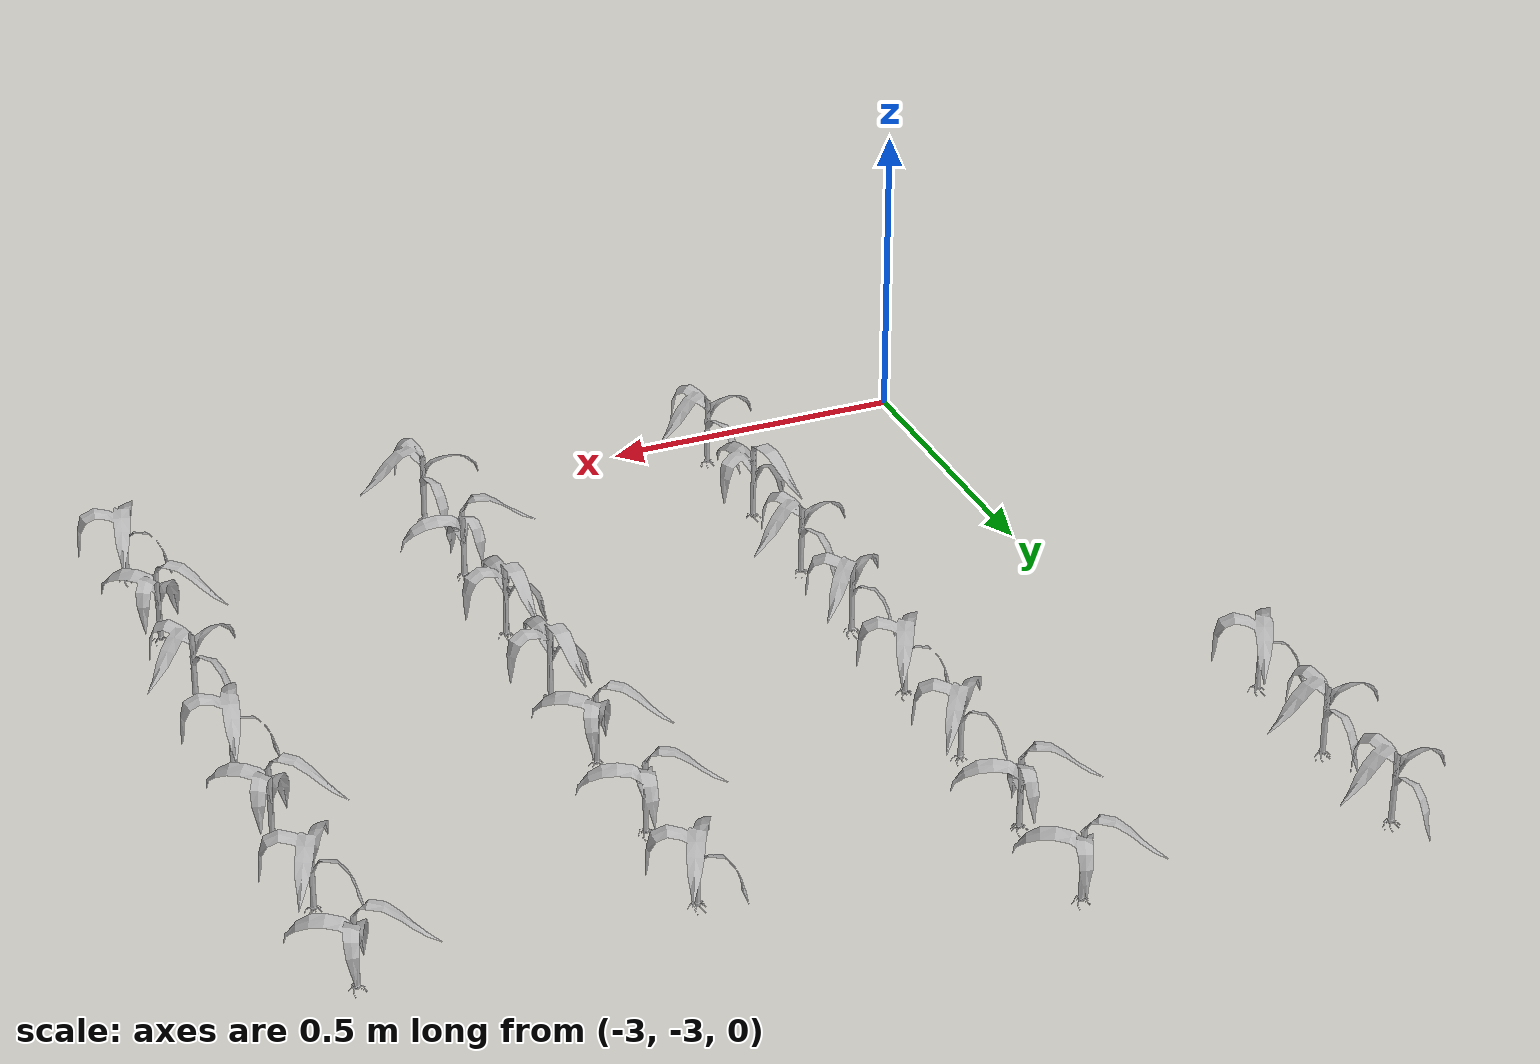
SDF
<sdf version="1.7">
 <world name="default">
  <model name="maize_-3.1033724693828124_-1.8749999999999996">
   <static>1</static>
   <link name="link">
    <inertial>
     <mass>0.2</mass>
     <inertia>
      <ixx>0.166667</ixx>
      <ixy>0</ixy>
      <ixz>0</ixz>
      <iyy>0.166667</iyy>
      <iyz>0</iyz>
      <izz>0.166667</izz>
     </inertia>
    </inertial>
    <collision name="collision">
     <geometry><mesh><uri>model://corn_3/meshes/corn.dae</uri><scale>0.25 0.25 0.25</scale></mesh></geometry>
     <surface>
      <friction><ode><mu>0</mu><mu2>0</mu2></ode></friction>
      <contact><ode><kp>0</kp><kd>0</kd><max_vel>0</max_vel><min_depth>0.002</min_depth></ode></contact>
     </surface>
    </collision>
    <visual name="visual">
     <geometry><mesh><uri>model://corn_3/meshes/corn.dae</uri><scale>0.25 0.25 0.25</scale></mesh></geometry>
    </visual>
    <velocity_decay><linear>0</linear><angular>0</angular></velocity_decay>
   </link>
   <pose>-3.10337 -1.875 0.05 0 -0 1.13271</pose>
  </model>
  <model name="maize_-3.1033724693828124_-1.6799999999999997">
   <static>1</static>
   <link name="link">
    <inertial>
     <mass>0.2</mass>
     <inertia>
      <ixx>0.166667</ixx>
      <ixy>0</ixy>
      <ixz>0</ixz>
      <iyy>0.166667</iyy>
      <iyz>0</iyz>
      <izz>0.166667</izz>
     </inertia>
    </inertial>
    <collision name="collision">
     <geometry><mesh><uri>model://corn_3/meshes/corn.dae</uri><scale>0.25 0.25 0.25</scale></mesh></geometry>
     <surface>
      <friction><ode><mu>0</mu><mu2>0</mu2></ode></friction>
      <contact><ode><kp>0</kp><kd>0</kd><max_vel>0</max_vel><min_depth>0.002</min_depth></ode></contact>
     </surface>
    </collision>
    <visual name="visual">
     <geometry><mesh><uri>model://corn_3/meshes/corn.dae</uri><scale>0.25 0.25 0.25</scale></mesh></geometry>
    </visual>
    <velocity_decay><linear>0</linear><angular>0</angular></velocity_decay>
   </link>
   <pose>-3.10337 -1.68 0.05 0 -0 0.282792</pose>
  </model>
  <model name="maize_-3.1033724693828124_-1.4849999999999999">
   <static>1</static>
   <link name="link">
    <inertial>
     <mass>0.2</mass>
     <inertia>
      <ixx>0.166667</ixx>
      <ixy>0</ixy>
      <ixz>0</ixz>
      <iyy>0.166667</iyy>
      <iyz>0</iyz>
      <izz>0.166667</izz>
     </inertia>
    </inertial>
    <collision name="collision">
     <geometry><mesh><uri>model://corn_3/meshes/corn.dae</uri><scale>0.25 0.25 0.25</scale></mesh></geometry>
     <surface>
      <friction><ode><mu>0</mu><mu2>0</mu2></ode></friction>
      <contact><ode><kp>0</kp><kd>0</kd><max_vel>0</max_vel><min_depth>0.002</min_depth></ode></contact>
     </surface>
    </collision>
    <visual name="visual">
     <geometry><mesh><uri>model://corn_3/meshes/corn.dae</uri><scale>0.25 0.25 0.25</scale></mesh></geometry>
    </visual>
    <velocity_decay><linear>0</linear><angular>0</angular></velocity_decay>
   </link>
   <pose>-3.10337 -1.485 0.05 0 -0 0.352071</pose>
  </model>
  <model name="maize_-2.605993253374367_-2.8499999999999996">
   <static>1</static>
   <link name="link">
    <inertial>
     <mass>0.2</mass>
     <inertia>
      <ixx>0.166667</ixx>
      <ixy>0</ixy>
      <ixz>0</ixz>
      <iyy>0.166667</iyy>
      <iyz>0</iyz>
      <izz>0.166667</izz>
     </inertia>
    </inertial>
    <collision name="collision">
     <geometry><mesh><uri>model://corn_3/meshes/corn.dae</uri><scale>0.25 0.25 0.25</scale></mesh></geometry>
     <surface>
      <friction><ode><mu>0</mu><mu2>0</mu2></ode></friction>
      <contact><ode><kp>0</kp><kd>0</kd><max_vel>0</max_vel><min_depth>0.002</min_depth></ode></contact>
     </surface>
    </collision>
    <visual name="visual">
     <geometry><mesh><uri>model://corn_3/meshes/corn.dae</uri><scale>0.25 0.25 0.25</scale></mesh></geometry>
    </visual>
    <velocity_decay><linear>0</linear><angular>0</angular></velocity_decay>
   </link>
   <pose>-2.60599 -2.85 0.05 0 -0 0.479187</pose>
  </model>
  <model name="maize_-2.605993253374367_-2.655">
   <static>1</static>
   <link name="link">
    <inertial>
     <mass>0.2</mass>
     <inertia>
      <ixx>0.166667</ixx>
      <ixy>0</ixy>
      <ixz>0</ixz>
      <iyy>0.166667</iyy>
      <iyz>0</iyz>
      <izz>0.166667</izz>
     </inertia>
    </inertial>
    <collision name="collision">
     <geometry><mesh><uri>model://corn_3/meshes/corn.dae</uri><scale>0.25 0.25 0.25</scale></mesh></geometry>
     <surface>
      <friction><ode><mu>0</mu><mu2>0</mu2></ode></friction>
      <contact><ode><kp>0</kp><kd>0</kd><max_vel>0</max_vel><min_depth>0.002</min_depth></ode></contact>
     </surface>
    </collision>
    <visual name="visual">
     <geometry><mesh><uri>model://corn_3/meshes/corn.dae</uri><scale>0.25 0.25 0.25</scale></mesh></geometry>
    </visual>
    <velocity_decay><linear>0</linear><angular>0</angular></velocity_decay>
   </link>
   <pose>-2.60599 -2.655 0.05 0 -0 1.92269</pose>
  </model>
  <model name="maize_-2.605993253374367_-2.46">
   <static>1</static>
   <link name="link">
    <inertial>
     <mass>0.2</mass>
     <inertia>
      <ixx>0.166667</ixx>
      <ixy>0</ixy>
      <ixz>0</ixz>
      <iyy>0.166667</iyy>
      <iyz>0</iyz>
      <izz>0.166667</izz>
     </inertia>
    </inertial>
    <collision name="collision">
     <geometry><mesh><uri>model://corn_3/meshes/corn.dae</uri><scale>0.25 0.25 0.25</scale></mesh></geometry>
     <surface>
      <friction><ode><mu>0</mu><mu2>0</mu2></ode></friction>
      <contact><ode><kp>0</kp><kd>0</kd><max_vel>0</max_vel><min_depth>0.002</min_depth></ode></contact>
     </surface>
    </collision>
    <visual name="visual">
     <geometry><mesh><uri>model://corn_3/meshes/corn.dae</uri><scale>0.25 0.25 0.25</scale></mesh></geometry>
    </visual>
    <velocity_decay><linear>0</linear><angular>0</angular></velocity_decay>
   </link>
   <pose>-2.60599 -2.46 0.05 0 -0 0.516654</pose>
  </model>
  <model name="maize_-2.605993253374367_-2.2649999999999997">
   <static>1</static>
   <link name="link">
    <inertial>
     <mass>0.2</mass>
     <inertia>
      <ixx>0.166667</ixx>
      <ixy>0</ixy>
      <ixz>0</ixz>
      <iyy>0.166667</iyy>
      <iyz>0</iyz>
      <izz>0.166667</izz>
     </inertia>
    </inertial>
    <collision name="collision">
     <geometry><mesh><uri>model://corn_3/meshes/corn.dae</uri><scale>0.25 0.25 0.25</scale></mesh></geometry>
     <surface>
      <friction><ode><mu>0</mu><mu2>0</mu2></ode></friction>
      <contact><ode><kp>0</kp><kd>0</kd><max_vel>0</max_vel><min_depth>0.002</min_depth></ode></contact>
     </surface>
    </collision>
    <visual name="visual">
     <geometry><mesh><uri>model://corn_3/meshes/corn.dae</uri><scale>0.25 0.25 0.25</scale></mesh></geometry>
    </visual>
    <velocity_decay><linear>0</linear><angular>0</angular></velocity_decay>
   </link>
   <pose>-2.60599 -2.265 0.05 0 -0 0.852969</pose>
  </model>
  <model name="maize_-2.605993253374367_-2.07">
   <static>1</static>
   <link name="link">
    <inertial>
     <mass>0.2</mass>
     <inertia>
      <ixx>0.166667</ixx>
      <ixy>0</ixy>
      <ixz>0</ixz>
      <iyy>0.166667</iyy>
      <iyz>0</iyz>
      <izz>0.166667</izz>
     </inertia>
    </inertial>
    <collision name="collision">
     <geometry><mesh><uri>model://corn_3/meshes/corn.dae</uri><scale>0.25 0.25 0.25</scale></mesh></geometry>
     <surface>
      <friction><ode><mu>0</mu><mu2>0</mu2></ode></friction>
      <contact><ode><kp>0</kp><kd>0</kd><max_vel>0</max_vel><min_depth>0.002</min_depth></ode></contact>
     </surface>
    </collision>
    <visual name="visual">
     <geometry><mesh><uri>model://corn_3/meshes/corn.dae</uri><scale>0.25 0.25 0.25</scale></mesh></geometry>
    </visual>
    <velocity_decay><linear>0</linear><angular>0</angular></velocity_decay>
   </link>
   <pose>-2.60599 -2.07 0.05 0 -0 1.12095</pose>
  </model>
  <model name="maize_-2.605993253374367_-1.8749999999999996">
   <static>1</static>
   <link name="link">
    <inertial>
     <mass>0.2</mass>
     <inertia>
      <ixx>0.166667</ixx>
      <ixy>0</ixy>
      <ixz>0</ixz>
      <iyy>0.166667</iyy>
      <iyz>0</iyz>
      <izz>0.166667</izz>
     </inertia>
    </inertial>
    <collision name="collision">
     <geometry><mesh><uri>model://corn_3/meshes/corn.dae</uri><scale>0.25 0.25 0.25</scale></mesh></geometry>
     <surface>
      <friction><ode><mu>0</mu><mu2>0</mu2></ode></friction>
      <contact><ode><kp>0</kp><kd>0</kd><max_vel>0</max_vel><min_depth>0.002</min_depth></ode></contact>
     </surface>
    </collision>
    <visual name="visual">
     <geometry><mesh><uri>model://corn_3/meshes/corn.dae</uri><scale>0.25 0.25 0.25</scale></mesh></geometry>
    </visual>
    <velocity_decay><linear>0</linear><angular>0</angular></velocity_decay>
   </link>
   <pose>-2.60599 -1.875 0.05 0 -0 0.968211</pose>
  </model>
  <model name="maize_-2.605993253374367_-1.6799999999999997">
   <static>1</static>
   <link name="link">
    <inertial>
     <mass>0.2</mass>
     <inertia>
      <ixx>0.166667</ixx>
      <ixy>0</ixy>
      <ixz>0</ixz>
      <iyy>0.166667</iyy>
      <iyz>0</iyz>
      <izz>0.166667</izz>
     </inertia>
    </inertial>
    <collision name="collision">
     <geometry><mesh><uri>model://corn_3/meshes/corn.dae</uri><scale>0.25 0.25 0.25</scale></mesh></geometry>
     <surface>
      <friction><ode><mu>0</mu><mu2>0</mu2></ode></friction>
      <contact><ode><kp>0</kp><kd>0</kd><max_vel>0</max_vel><min_depth>0.002</min_depth></ode></contact>
     </surface>
    </collision>
    <visual name="visual">
     <geometry><mesh><uri>model://corn_3/meshes/corn.dae</uri><scale>0.25 0.25 0.25</scale></mesh></geometry>
    </visual>
    <velocity_decay><linear>0</linear><angular>0</angular></velocity_decay>
   </link>
   <pose>-2.60599 -1.68 0.05 0 -0 2.83694</pose>
  </model>
  <model name="maize_-2.605993253374367_-1.4849999999999999">
   <static>1</static>
   <link name="link">
    <inertial>
     <mass>0.2</mass>
     <inertia>
      <ixx>0.166667</ixx>
      <ixy>0</ixy>
      <ixz>0</ixz>
      <iyy>0.166667</iyy>
      <iyz>0</iyz>
      <izz>0.166667</izz>
     </inertia>
    </inertial>
    <collision name="collision">
     <geometry><mesh><uri>model://corn_3/meshes/corn.dae</uri><scale>0.25 0.25 0.25</scale></mesh></geometry>
     <surface>
      <friction><ode><mu>0</mu><mu2>0</mu2></ode></friction>
      <contact><ode><kp>0</kp><kd>0</kd><max_vel>0</max_vel><min_depth>0.002</min_depth></ode></contact>
     </surface>
    </collision>
    <visual name="visual">
     <geometry><mesh><uri>model://corn_3/meshes/corn.dae</uri><scale>0.25 0.25 0.25</scale></mesh></geometry>
    </visual>
    <velocity_decay><linear>0</linear><angular>0</angular></velocity_decay>
   </link>
   <pose>-2.60599 -1.485 0.05 0 -0 2.62172</pose>
  </model>
  <model name="maize_-2.1093609480429203_-2.8499999999999996">
   <static>1</static>
   <link name="link">
    <inertial>
     <mass>0.2</mass>
     <inertia>
      <ixx>0.166667</ixx>
      <ixy>0</ixy>
      <ixz>0</ixz>
      <iyy>0.166667</iyy>
      <iyz>0</iyz>
      <izz>0.166667</izz>
     </inertia>
    </inertial>
    <collision name="collision">
     <geometry><mesh><uri>model://corn_3/meshes/corn.dae</uri><scale>0.25 0.25 0.25</scale></mesh></geometry>
     <surface>
      <friction><ode><mu>0</mu><mu2>0</mu2></ode></friction>
      <contact><ode><kp>0</kp><kd>0</kd><max_vel>0</max_vel><min_depth>0.002</min_depth></ode></contact>
     </surface>
    </collision>
    <visual name="visual">
     <geometry><mesh><uri>model://corn_3/meshes/corn.dae</uri><scale>0.25 0.25 0.25</scale></mesh></geometry>
    </visual>
    <velocity_decay><linear>0</linear><angular>0</angular></velocity_decay>
   </link>
   <pose>-2.10936 -2.85 0.05 0 -0 0.244552</pose>
  </model>
  <model name="maize_-2.1093609480429203_-2.655">
   <static>1</static>
   <link name="link">
    <inertial>
     <mass>0.2</mass>
     <inertia>
      <ixx>0.166667</ixx>
      <ixy>0</ixy>
      <ixz>0</ixz>
      <iyy>0.166667</iyy>
      <iyz>0</iyz>
      <izz>0.166667</izz>
     </inertia>
    </inertial>
    <collision name="collision">
     <geometry><mesh><uri>model://corn_3/meshes/corn.dae</uri><scale>0.25 0.25 0.25</scale></mesh></geometry>
     <surface>
      <friction><ode><mu>0</mu><mu2>0</mu2></ode></friction>
      <contact><ode><kp>0</kp><kd>0</kd><max_vel>0</max_vel><min_depth>0.002</min_depth></ode></contact>
     </surface>
    </collision>
    <visual name="visual">
     <geometry><mesh><uri>model://corn_3/meshes/corn.dae</uri><scale>0.25 0.25 0.25</scale></mesh></geometry>
    </visual>
    <velocity_decay><linear>0</linear><angular>0</angular></velocity_decay>
   </link>
   <pose>-2.10936 -2.655 0.05 0 -0 3.12506</pose>
  </model>
  <model name="maize_-2.1093609480429203_-2.46">
   <static>1</static>
   <link name="link">
    <inertial>
     <mass>0.2</mass>
     <inertia>
      <ixx>0.166667</ixx>
      <ixy>0</ixy>
      <ixz>0</ixz>
      <iyy>0.166667</iyy>
      <iyz>0</iyz>
      <izz>0.166667</izz>
     </inertia>
    </inertial>
    <collision name="collision">
     <geometry><mesh><uri>model://corn_3/meshes/corn.dae</uri><scale>0.25 0.25 0.25</scale></mesh></geometry>
     <surface>
      <friction><ode><mu>0</mu><mu2>0</mu2></ode></friction>
      <contact><ode><kp>0</kp><kd>0</kd><max_vel>0</max_vel><min_depth>0.002</min_depth></ode></contact>
     </surface>
    </collision>
    <visual name="visual">
     <geometry><mesh><uri>model://corn_3/meshes/corn.dae</uri><scale>0.25 0.25 0.25</scale></mesh></geometry>
    </visual>
    <velocity_decay><linear>0</linear><angular>0</angular></velocity_decay>
   </link>
   <pose>-2.10936 -2.46 0.05 0 -0 1.69212</pose>
  </model>
  <model name="maize_-2.1093609480429203_-2.2649999999999997">
   <static>1</static>
   <link name="link">
    <inertial>
     <mass>0.2</mass>
     <inertia>
      <ixx>0.166667</ixx>
      <ixy>0</ixy>
      <ixz>0</ixz>
      <iyy>0.166667</iyy>
      <iyz>0</iyz>
      <izz>0.166667</izz>
     </inertia>
    </inertial>
    <collision name="collision">
     <geometry><mesh><uri>model://corn_3/meshes/corn.dae</uri><scale>0.25 0.25 0.25</scale></mesh></geometry>
     <surface>
      <friction><ode><mu>0</mu><mu2>0</mu2></ode></friction>
      <contact><ode><kp>0</kp><kd>0</kd><max_vel>0</max_vel><min_depth>0.002</min_depth></ode></contact>
     </surface>
    </collision>
    <visual name="visual">
     <geometry><mesh><uri>model://corn_3/meshes/corn.dae</uri><scale>0.25 0.25 0.25</scale></mesh></geometry>
    </visual>
    <velocity_decay><linear>0</linear><angular>0</angular></velocity_decay>
   </link>
   <pose>-2.10936 -2.265 0.05 0 -0 1.7209</pose>
  </model>
  <model name="maize_-2.1093609480429203_-2.07">
   <static>1</static>
   <link name="link">
    <inertial>
     <mass>0.2</mass>
     <inertia>
      <ixx>0.166667</ixx>
      <ixy>0</ixy>
      <ixz>0</ixz>
      <iyy>0.166667</iyy>
      <iyz>0</iyz>
      <izz>0.166667</izz>
     </inertia>
    </inertial>
    <collision name="collision">
     <geometry><mesh><uri>model://corn_3/meshes/corn.dae</uri><scale>0.25 0.25 0.25</scale></mesh></geometry>
     <surface>
      <friction><ode><mu>0</mu><mu2>0</mu2></ode></friction>
      <contact><ode><kp>0</kp><kd>0</kd><max_vel>0</max_vel><min_depth>0.002</min_depth></ode></contact>
     </surface>
    </collision>
    <visual name="visual">
     <geometry><mesh><uri>model://corn_3/meshes/corn.dae</uri><scale>0.25 0.25 0.25</scale></mesh></geometry>
    </visual>
    <velocity_decay><linear>0</linear><angular>0</angular></velocity_decay>
   </link>
   <pose>-2.10936 -2.07 0.05 0 -0 2.59607</pose>
  </model>
  <model name="maize_-2.1093609480429203_-1.8749999999999996">
   <static>1</static>
   <link name="link">
    <inertial>
     <mass>0.2</mass>
     <inertia>
      <ixx>0.166667</ixx>
      <ixy>0</ixy>
      <ixz>0</ixz>
      <iyy>0.166667</iyy>
      <iyz>0</iyz>
      <izz>0.166667</izz>
     </inertia>
    </inertial>
    <collision name="collision">
     <geometry><mesh><uri>model://corn_3/meshes/corn.dae</uri><scale>0.25 0.25 0.25</scale></mesh></geometry>
     <surface>
      <friction><ode><mu>0</mu><mu2>0</mu2></ode></friction>
      <contact><ode><kp>0</kp><kd>0</kd><max_vel>0</max_vel><min_depth>0.002</min_depth></ode></contact>
     </surface>
    </collision>
    <visual name="visual">
     <geometry><mesh><uri>model://corn_3/meshes/corn.dae</uri><scale>0.25 0.25 0.25</scale></mesh></geometry>
    </visual>
    <velocity_decay><linear>0</linear><angular>0</angular></velocity_decay>
   </link>
   <pose>-2.10936 -1.875 0.05 0 -0 2.82212</pose>
  </model>
  <model name="maize_-2.1093609480429203_-1.6799999999999997">
   <static>1</static>
   <link name="link">
    <inertial>
     <mass>0.2</mass>
     <inertia>
      <ixx>0.166667</ixx>
      <ixy>0</ixy>
      <ixz>0</ixz>
      <iyy>0.166667</iyy>
      <iyz>0</iyz>
      <izz>0.166667</izz>
     </inertia>
    </inertial>
    <collision name="collision">
     <geometry><mesh><uri>model://corn_3/meshes/corn.dae</uri><scale>0.25 0.25 0.25</scale></mesh></geometry>
     <surface>
      <friction><ode><mu>0</mu><mu2>0</mu2></ode></friction>
      <contact><ode><kp>0</kp><kd>0</kd><max_vel>0</max_vel><min_depth>0.002</min_depth></ode></contact>
     </surface>
    </collision>
    <visual name="visual">
     <geometry><mesh><uri>model://corn_3/meshes/corn.dae</uri><scale>0.25 0.25 0.25</scale></mesh></geometry>
    </visual>
    <velocity_decay><linear>0</linear><angular>0</angular></velocity_decay>
   </link>
   <pose>-2.10936 -1.68 0.05 0 -0 1.15615</pose>
  </model>
  <model name="maize_-1.6134747127982658_-2.8499999999999996">
   <static>1</static>
   <link name="link">
    <inertial>
     <mass>0.2</mass>
     <inertia>
      <ixx>0.166667</ixx>
      <ixy>0</ixy>
      <ixz>0</ixz>
      <iyy>0.166667</iyy>
      <iyz>0</iyz>
      <izz>0.166667</izz>
     </inertia>
    </inertial>
    <collision name="collision">
     <geometry><mesh><uri>model://corn_3/meshes/corn.dae</uri><scale>0.25 0.25 0.25</scale></mesh></geometry>
     <surface>
      <friction><ode><mu>0</mu><mu2>0</mu2></ode></friction>
      <contact><ode><kp>0</kp><kd>0</kd><max_vel>0</max_vel><min_depth>0.002</min_depth></ode></contact>
     </surface>
    </collision>
    <visual name="visual">
     <geometry><mesh><uri>model://corn_3/meshes/corn.dae</uri><scale>0.25 0.25 0.25</scale></mesh></geometry>
    </visual>
    <velocity_decay><linear>0</linear><angular>0</angular></velocity_decay>
   </link>
   <pose>-1.61347 -2.85 0.05 0 -0 1.33156</pose>
  </model>
  <model name="maize_-1.6134747127982658_-2.655">
   <static>1</static>
   <link name="link">
    <inertial>
     <mass>0.2</mass>
     <inertia>
      <ixx>0.166667</ixx>
      <ixy>0</ixy>
      <ixz>0</ixz>
      <iyy>0.166667</iyy>
      <iyz>0</iyz>
      <izz>0.166667</izz>
     </inertia>
    </inertial>
    <collision name="collision">
     <geometry><mesh><uri>model://corn_3/meshes/corn.dae</uri><scale>0.25 0.25 0.25</scale></mesh></geometry>
     <surface>
      <friction><ode><mu>0</mu><mu2>0</mu2></ode></friction>
      <contact><ode><kp>0</kp><kd>0</kd><max_vel>0</max_vel><min_depth>0.002</min_depth></ode></contact>
     </surface>
    </collision>
    <visual name="visual">
     <geometry><mesh><uri>model://corn_3/meshes/corn.dae</uri><scale>0.25 0.25 0.25</scale></mesh></geometry>
    </visual>
    <velocity_decay><linear>0</linear><angular>0</angular></velocity_decay>
   </link>
   <pose>-1.61347 -2.655 0.05 0 -0 2.47828</pose>
  </model>
  <model name="maize_-1.6134747127982658_-2.46">
   <static>1</static>
   <link name="link">
    <inertial>
     <mass>0.2</mass>
     <inertia>
      <ixx>0.166667</ixx>
      <ixy>0</ixy>
      <ixz>0</ixz>
      <iyy>0.166667</iyy>
      <iyz>0</iyz>
      <izz>0.166667</izz>
     </inertia>
    </inertial>
    <collision name="collision">
     <geometry><mesh><uri>model://corn_3/meshes/corn.dae</uri><scale>0.25 0.25 0.25</scale></mesh></geometry>
     <surface>
      <friction><ode><mu>0</mu><mu2>0</mu2></ode></friction>
      <contact><ode><kp>0</kp><kd>0</kd><max_vel>0</max_vel><min_depth>0.002</min_depth></ode></contact>
     </surface>
    </collision>
    <visual name="visual">
     <geometry><mesh><uri>model://corn_3/meshes/corn.dae</uri><scale>0.25 0.25 0.25</scale></mesh></geometry>
    </visual>
    <velocity_decay><linear>0</linear><angular>0</angular></velocity_decay>
   </link>
   <pose>-1.61347 -2.46 0.05 0 -0 0.735123</pose>
  </model>
  <model name="maize_-1.6134747127982658_-2.2649999999999997">
   <static>1</static>
   <link name="link">
    <inertial>
     <mass>0.2</mass>
     <inertia>
      <ixx>0.166667</ixx>
      <ixy>0</ixy>
      <ixz>0</ixz>
      <iyy>0.166667</iyy>
      <iyz>0</iyz>
      <izz>0.166667</izz>
     </inertia>
    </inertial>
    <collision name="collision">
     <geometry><mesh><uri>model://corn_3/meshes/corn.dae</uri><scale>0.25 0.25 0.25</scale></mesh></geometry>
     <surface>
      <friction><ode><mu>0</mu><mu2>0</mu2></ode></friction>
      <contact><ode><kp>0</kp><kd>0</kd><max_vel>0</max_vel><min_depth>0.002</min_depth></ode></contact>
     </surface>
    </collision>
    <visual name="visual">
     <geometry><mesh><uri>model://corn_3/meshes/corn.dae</uri><scale>0.25 0.25 0.25</scale></mesh></geometry>
    </visual>
    <velocity_decay><linear>0</linear><angular>0</angular></velocity_decay>
   </link>
   <pose>-1.61347 -2.265 0.05 0 -0 1.38897</pose>
  </model>
  <model name="maize_-1.6134747127982658_-2.07">
   <static>1</static>
   <link name="link">
    <inertial>
     <mass>0.2</mass>
     <inertia>
      <ixx>0.166667</ixx>
      <ixy>0</ixy>
      <ixz>0</ixz>
      <iyy>0.166667</iyy>
      <iyz>0</iyz>
      <izz>0.166667</izz>
     </inertia>
    </inertial>
    <collision name="collision">
     <geometry><mesh><uri>model://corn_3/meshes/corn.dae</uri><scale>0.25 0.25 0.25</scale></mesh></geometry>
     <surface>
      <friction><ode><mu>0</mu><mu2>0</mu2></ode></friction>
      <contact><ode><kp>0</kp><kd>0</kd><max_vel>0</max_vel><min_depth>0.002</min_depth></ode></contact>
     </surface>
    </collision>
    <visual name="visual">
     <geometry><mesh><uri>model://corn_3/meshes/corn.dae</uri><scale>0.25 0.25 0.25</scale></mesh></geometry>
    </visual>
    <velocity_decay><linear>0</linear><angular>0</angular></velocity_decay>
   </link>
   <pose>-1.61347 -2.07 0.05 0 -0 2.54249</pose>
  </model>
  <model name="maize_-1.6134747127982658_-1.8749999999999996">
   <static>1</static>
   <link name="link">
    <inertial>
     <mass>0.2</mass>
     <inertia>
      <ixx>0.166667</ixx>
      <ixy>0</ixy>
      <ixz>0</ixz>
      <iyy>0.166667</iyy>
      <iyz>0</iyz>
      <izz>0.166667</izz>
     </inertia>
    </inertial>
    <collision name="collision">
     <geometry><mesh><uri>model://corn_3/meshes/corn.dae</uri><scale>0.25 0.25 0.25</scale></mesh></geometry>
     <surface>
      <friction><ode><mu>0</mu><mu2>0</mu2></ode></friction>
      <contact><ode><kp>0</kp><kd>0</kd><max_vel>0</max_vel><min_depth>0.002</min_depth></ode></contact>
     </surface>
    </collision>
    <visual name="visual">
     <geometry><mesh><uri>model://corn_3/meshes/corn.dae</uri><scale>0.25 0.25 0.25</scale></mesh></geometry>
    </visual>
    <velocity_decay><linear>0</linear><angular>0</angular></velocity_decay>
   </link>
   <pose>-1.61347 -1.875 0.05 0 -0 1.15705</pose>
  </model>
  <model name="maize_-1.6134747127982658_-1.6799999999999997">
   <static>1</static>
   <link name="link">
    <inertial>
     <mass>0.2</mass>
     <inertia>
      <ixx>0.166667</ixx>
      <ixy>0</ixy>
      <ixz>0</ixz>
      <iyy>0.166667</iyy>
      <iyz>0</iyz>
      <izz>0.166667</izz>
     </inertia>
    </inertial>
    <collision name="collision">
     <geometry><mesh><uri>model://corn_3/meshes/corn.dae</uri><scale>0.25 0.25 0.25</scale></mesh></geometry>
     <surface>
      <friction><ode><mu>0</mu><mu2>0</mu2></ode></friction>
      <contact><ode><kp>0</kp><kd>0</kd><max_vel>0</max_vel><min_depth>0.002</min_depth></ode></contact>
     </surface>
    </collision>
    <visual name="visual">
     <geometry><mesh><uri>model://corn_3/meshes/corn.dae</uri><scale>0.25 0.25 0.25</scale></mesh></geometry>
    </visual>
    <velocity_decay><linear>0</linear><angular>0</angular></velocity_decay>
   </link>
   <pose>-1.61347 -1.68 0.05 0 -0 2.70718</pose>
  </model>
 </world>
</sdf>
